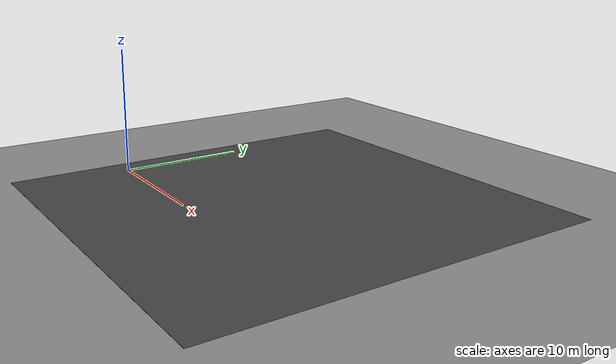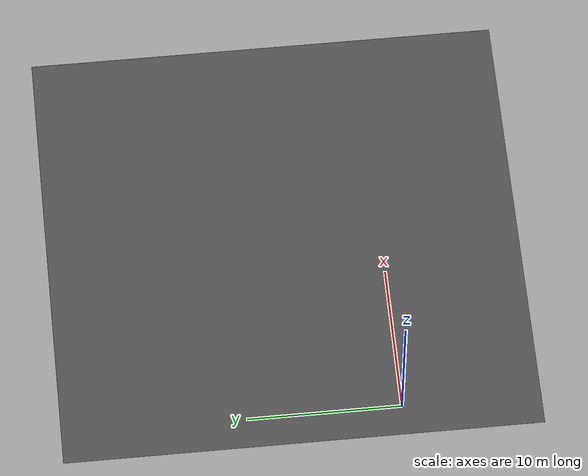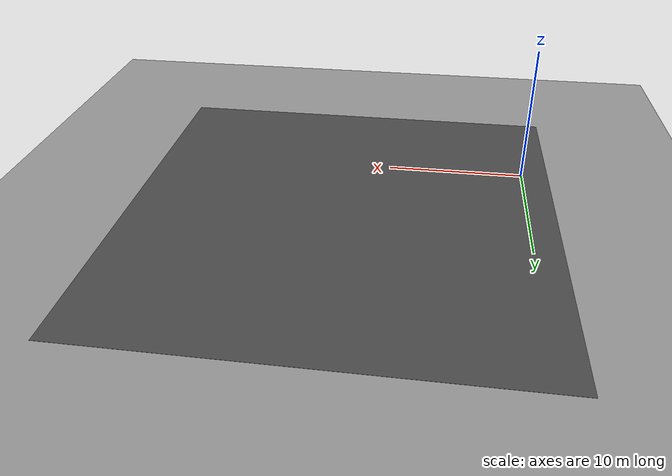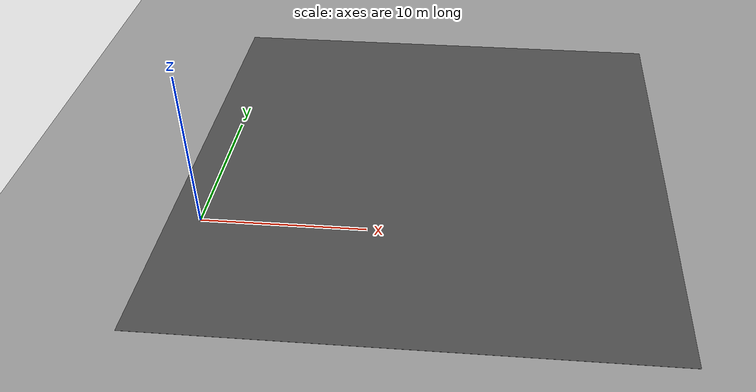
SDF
<?xml version="1.0" ?>
<sdf version='1.7'>
    <model name='parking_lot'>
        <static>1</static>
        <link name='ground'>
            <collision name='collision'>
                <geometry>
                    <plane>
                        <normal>0 0 1</normal>
                        <size>100 100</size>
                    </plane>
                </geometry>
                <surface>
                    <friction>
                        <ode>
                            <mu>100</mu>
                            <mu2>50</mu2>
                        </ode>
                        <torsional>
                            <ode/>
                        </torsional>
                    </friction>
                    <bounce/>
                    <contact>
                        <ode/>
                    </contact>
                </surface>
                <max_contacts>10</max_contacts>
            </collision>
            <visual name='visual'>
                <cast_shadows>0</cast_shadows>
                <geometry>
                    <plane>
                        <normal>0 0 1</normal>
                        <size>100 100</size>
                    </plane>
                </geometry>
                <material>
                    <script>
                        <uri>file://media/materials/scripts/gazebo.material</uri>
                        <name>Gazebo/Grey</name>
                    </script>
                </material>
            </visual>
            <velocity_decay>
                <linear>0</linear>
                <angular>0</angular>
            </velocity_decay>
            <self_collide>0</self_collide>
            <kinematic>0</kinematic>
            <gravity>1</gravity>
            <enable_wind>0</enable_wind>
        </link>
    </model>

    <physics type='ode'>
        <max_step_size>0.001</max_step_size>
        <real_time_factor>1</real_time_factor>
        <real_time_update_rate>1000</real_time_update_rate>
    </physics>
    <scene>
        <ambient>0.4 0.4 0.4 1</ambient>
        <background>0.7 0.7 0.7 1</background>
        <shadows>1</shadows>
    </scene>
    <spherical_coordinates>
        <surface_model>EARTH_WGS84</surface_model>
        <latitude_deg>0</latitude_deg>
        <longitude_deg>0</longitude_deg>
        <elevation>0</elevation>
        <heading_deg>0</heading_deg>
    </spherical_coordinates>
    <model name='asphalt_plane'>
        <static>1</static>
        <link name='link'>
            <collision name='collision'>
                <geometry>
                    <box>
                        <size>30.125 31 0.01</size>
                    </box>
                </geometry>
                <max_contacts>10</max_contacts>
                <surface>
                    <bounce/>
                    <friction>
                        <ode/>
                        <torsional>
                            <ode/>
                        </torsional>
                    </friction>
                    <contact>
                        <ode/>
                    </contact>
                </surface>
            </collision>
            <visual name='visual'>
                <cast_shadows>0</cast_shadows>
                <geometry>
                    <box>
                        <size>30.125 31 0.01</size>
                    </box>
                </geometry>
                <material>
                    <script>
                        <uri>model://asphalt_plane/materials/scripts</uri>
                        <uri>model://asphalt_plane/materials/textures</uri>
                        <name>vrc/asphalt</name>
                    </script>
                </material>
            </visual>
            <velocity_decay>
                <linear>0</linear>
                <angular>0</angular>
            </velocity_decay>
            <self_collide>0</self_collide>
            <kinematic>0</kinematic>
            <gravity>1</gravity>
            <enable_wind>0</enable_wind>
        </link>
        <pose>13.0625 6.5 0 0 -0 0</pose>
    </model>

</sdf>
